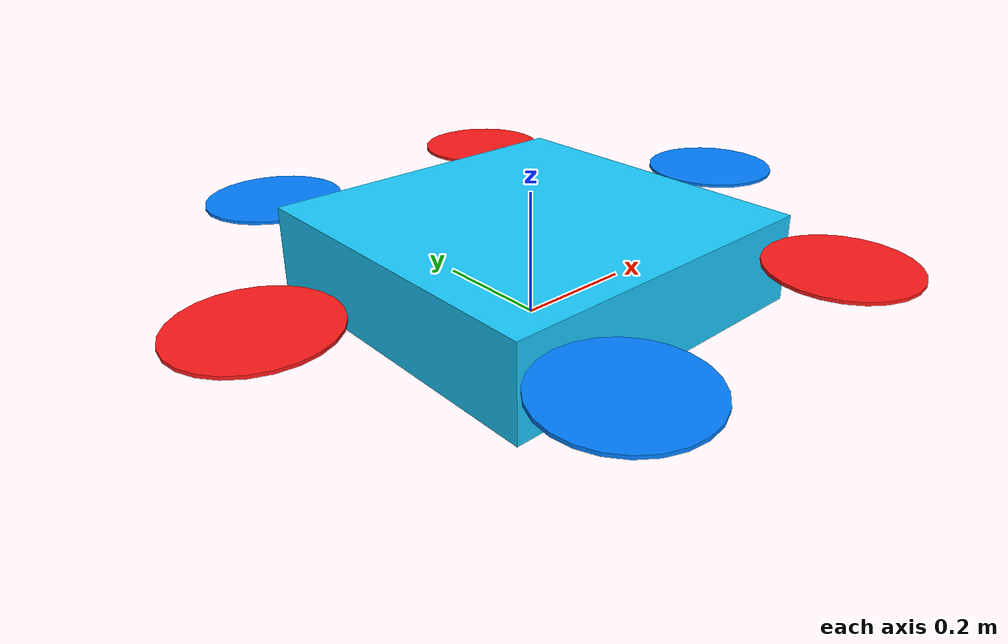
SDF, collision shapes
<?xml version="1.0" ?>
<sdf version="1.8">
  <model name="sutra_uav_standard">
    <pose>0 0 0.1 0 0 0</pose>
    <static>false</static>
    <self_collide>false</self_collide>

    <!-- ── Main Airframe & Avionics Link ───────────────────────────────── -->
    <link name="base_link">
      <pose>0 0 0 0 0 0</pose>
      <inertial>
        <mass>2.00</mass>
        <inertia>
          <ixx>0.0420</ixx>
          <ixy>0</ixy>
          <ixz>0</ixz>
          <iyy>0.0420</iyy>
          <iyz>0</iyz>
          <izz>0.0800</izz>
        </inertia>
      </inertial>

      <collision name="base_link_collision">
        <geometry>
          <box><size>0.55 0.55 0.14</size></box>
        </geometry>
      </collision>

      <!-- 3D Collada Body Mesh: AscTec Firefly Hexacopter Frame -->
      <visual name="base_link_visual">
        <geometry>
          <mesh>
            <scale>1.5 1.5 1.5</scale>
            <uri>model://x3_uav/meshes/firefly.dae</uri>
          </mesh>
        </geometry>
      </visual>

      <!-- Physical Hardware Stack Visuals -->
      <!-- 1. Top 360° LiDAR Puck -->
      <visual name="lidar_puck"><pose>0 0 0.075 0 0 0</pose><geometry><cylinder><radius>0.038</radius><length>0.028</length></cylinder></geometry><material><ambient>0.1 0.7 0.9 1</ambient><diffuse>0.1 0.8 1.0 1</diffuse><emissive>0.0 0.4 0.8 1</emissive></material></visual>
      <!-- 2. Edge AI TPU Enclosure -->
      <visual name="edge_tpu"><pose>-0.05 0 0.035 0 0 0</pose><geometry><box><size>0.08 0.06 0.022</size></box></geometry><material><ambient>0.15 0.15 0.18 1</ambient><diffuse>0.2 0.2 0.25 1</diffuse></material></visual>
      <!-- 3. Dual Camera Gimbal -->
      <visual name="gimbal_pod"><pose>0.15 0 -0.03 0 0.15 0</pose><geometry><box><size>0.04 0.06 0.03</size></box></geometry><material><ambient>0.2 0.2 0.2 1</ambient><diffuse>0.3 0.3 0.3 1</diffuse></material></visual>
      <!-- 4. GNSS Antenna Mast -->
      <visual name="gps_mast"><pose>-0.10 -0.07 0.07 0 0 0</pose><geometry><cylinder><radius>0.004</radius><length>0.09</length></cylinder></geometry><material><ambient>0.1 0.1 0.1 1</ambient><diffuse>0.2 0.2 0.2 1</diffuse></material></visual>
      <visual name="gps_puck"><pose>-0.10 -0.07 0.12 0 0 0</pose><geometry><cylinder><radius>0.020</radius><length>0.010</length></cylinder></geometry><material><ambient>0.8 0.8 0.8 1</ambient><diffuse>0.9 0.9 0.9 1</diffuse></material></visual>
      <!-- 5. LiPo Battery Underbelly -->
      <visual name="lipo_pack"><pose>0 0 -0.03 0 0 0</pose><geometry><box><size>0.12 0.05 0.035</size></box></geometry><material><ambient>0.8 0.6 0.0 1</ambient><diffuse>0.9 0.7 0.0 1</diffuse></material></visual>

      <!-- 📡 9-DOF AVIONICS SENSOR SUITE                                  -->

      <!-- 1. IMU (250Hz High-Rate Accelerometer + Gyroscope) -->
      <sensor name="imu_sensor" type="imu">
        <always_on>1</always_on>
        <update_rate>250.0</update_rate>
        <topic>imu</topic>
        <imu>
          <angular_velocity>
            <x><noise type="gaussian"><stddev>0.0002</stddev><bias_mean>0.00001</bias_mean><bias_stddev>0.000005</bias_stddev></noise></x>
            <y><noise type="gaussian"><stddev>0.0002</stddev><bias_mean>0.00001</bias_mean><bias_stddev>0.000005</bias_stddev></noise></y>
            <z><noise type="gaussian"><stddev>0.0002</stddev><bias_mean>0.00001</bias_mean><bias_stddev>0.000005</bias_stddev></noise></z>
          </angular_velocity>
          <linear_acceleration>
            <x><noise type="gaussian"><stddev>0.01</stddev><bias_mean>0.001</bias_mean><bias_stddev>0.0005</bias_stddev></noise></x>
            <y><noise type="gaussian"><stddev>0.01</stddev><bias_mean>0.001</bias_mean><bias_stddev>0.0005</bias_stddev></noise></y>
            <z><noise type="gaussian"><stddev>0.01</stddev><bias_mean>0.001</bias_mean><bias_stddev>0.0005</bias_stddev></noise></z>
          </linear_acceleration>
        </imu>
      </sensor>

      <!-- 2. Barometer / Air Pressure (50Hz Absolute Pressure for EKF2) -->
      <sensor name="air_pressure_sensor" type="air_pressure">
        <always_on>1</always_on>
        <update_rate>50.0</update_rate>
        <topic>air_pressure</topic>
        <air_pressure>
          <reference_altitude>0.0</reference_altitude>
          <pressure>
            <noise type="gaussian">
              <mean>0.0</mean>
              <stddev>0.01</stddev>
            </noise>
          </pressure>
        </air_pressure>
      </sensor>

      <!-- 3. 3-Axis Magnetometer (50Hz Geomagnetic Field) -->
      <sensor name="magnetometer_sensor" type="magnetometer">
        <always_on>1</always_on>
        <update_rate>50.0</update_rate>
        <topic>magnetic_field</topic>
        <magnetometer>
          <x><noise type="gaussian"><mean>0.0</mean><stddev>0.0001</stddev></noise></x>
          <y><noise type="gaussian"><mean>0.0</mean><stddev>0.0001</stddev></noise></y>
          <z><noise type="gaussian"><mean>0.0</mean><stddev>0.0001</stddev></noise></z>
        </magnetometer>
      </sensor>

      <!-- 4. NavSat / Multi-Band GNSS (10Hz Precision Fix) -->
      <sensor name="navsat_sensor" type="navsat">
        <always_on>1</always_on>
        <update_rate>10.0</update_rate>
        <topic>navsat</topic>
      </sensor>

      <!-- 5. 360° 3D GPU LiDAR (10Hz 32-Channel OctoMap Sensor) -->
      <sensor name="gpu_lidar" type="gpu_lidar">
        <pose>0 0 0.075 0 0 0</pose>
        <always_on>1</always_on>
        <update_rate>10.0</update_rate>
        <topic>scan/points</topic>
        <lidar>
          <scan>
            <horizontal>
              <samples>720</samples>
              <resolution>1</resolution>
              <min_angle>-3.14159265</min_angle>
              <max_angle>3.14159265</max_angle>
            </horizontal>
            <vertical>
              <samples>32</samples>
              <resolution>1</resolution>
              <min_angle>-0.436332</min_angle>
              <max_angle>0.261799</max_angle>
            </vertical>
          </scan>
          <range>
            <min>0.2</min>
            <max>50.0</max>
            <resolution>0.01</resolution>
          </range>
          <noise>
            <type>gaussian</type>
            <mean>0.0</mean>
            <stddev>0.01</stddev>
          </noise>
        </lidar>
      </sensor>

      <!-- 6. Downward Laser Altimeter (50Hz Precision Rangefinder) -->
      <sensor name="altimeter_rangefinder" type="ray">
        <pose>0 0 -0.03 0 1.5707963 0</pose>
        <always_on>1</always_on>
        <update_rate>50.0</update_rate>
        <topic>rangefinder/distance</topic>
        <ray>
          <scan>
            <horizontal><samples>1</samples><resolution>1</resolution><min_angle>0.0</min_angle><max_angle>0.0</max_angle></horizontal>
          </scan>
          <range>
            <min>0.05</min>
            <max>40.0</max>
            <resolution>0.005</resolution>
          </range>
          <noise>
            <type>gaussian</type>
            <mean>0.0</mean>
            <stddev>0.005</stddev>
          </noise>
        </ray>
      </sensor>

      <!-- 7. Forward Optical RGB Camera (30Hz 1280x720 HD) -->
      <sensor name="camera_rgb" type="camera">
        <pose>0.15 -0.015 -0.03 0 0.15 0</pose>
        <always_on>1</always_on>
        <update_rate>30.0</update_rate>
        <topic>camera/image_raw</topic>
        <camera>
          <horizontal_fov>1.3962634</horizontal_fov>
          <image>
            <width>1280</width>
            <height>720</height>
            <format>R8G8B8</format>
          </image>
          <clip>
            <near>0.1</near>
            <far>200.0</far>
          </clip>
        </camera>
      </sensor>

      <!-- 8. Forward FLIR LWIR Thermal Camera (30Hz 640x480 Radiance) -->
      <sensor name="camera_thermal" type="thermal">
        <pose>0.15 0.015 -0.03 0 0.15 0</pose>
        <always_on>1</always_on>
        <update_rate>30.0</update_rate>
        <topic>thermal_camera/image_raw</topic>
        <camera>
          <horizontal_fov>1.0471975</horizontal_fov>
          <image>
            <width>640</width>
            <height>480</height>
            <format>L8</format>
          </image>
          <clip>
            <near>0.1</near>
            <far>150.0</far>
          </clip>
        </camera>
      </sensor>

    </link>

    <!-- ── 6x Rotor Links & Joints (Hexa-X Fault-Tolerant Layout) ───────── -->
    <link name="rotor_0">
      <pose>0.45 0.0 0.04 0 0 0</pose>
      <inertial><mass>0.007</mass><inertia><ixx>9.75e-07</ixx><iyy>4.17e-05</iyy><izz>4.26e-05</izz></inertia></inertial>
      <collision name="rotor_0_collision"><geometry><cylinder><radius>0.11</radius><length>0.005</length></cylinder></geometry></collision>
      <visual name="rotor_0_visual"><geometry><mesh><scale>0.11 0.11 0.11</scale><uri>model://x3_uav/meshes/propeller_ccw.dae</uri></mesh></geometry><material><ambient>0.0 0.4 0.9 1</ambient><diffuse>0.0 0.5 1.0 1</diffuse></material></visual>
    </link>
    <joint name="rotor_0_joint" type="revolute"><child>rotor_0</child><parent>base_link</parent><axis><xyz>0 0 1</xyz><limit><lower>-1e16</lower><upper>1e16</upper></limit></axis></joint>

    <link name="rotor_1">
      <pose>0.225 0.3897 0.04 0 0 0</pose>
      <inertial><mass>0.007</mass><inertia><ixx>9.75e-07</ixx><iyy>4.17e-05</iyy><izz>4.26e-05</izz></inertia></inertial>
      <collision name="rotor_1_collision"><geometry><cylinder><radius>0.11</radius><length>0.005</length></cylinder></geometry></collision>
      <visual name="rotor_1_visual"><geometry><mesh><scale>0.11 0.11 0.11</scale><uri>model://x3_uav/meshes/propeller_cw.dae</uri></mesh></geometry><material><ambient>0.9 0.1 0.1 1</ambient><diffuse>1.0 0.1 0.1 1</diffuse></material></visual>
    </link>
    <joint name="rotor_1_joint" type="revolute"><child>rotor_1</child><parent>base_link</parent><axis><xyz>0 0 1</xyz><limit><lower>-1e16</lower><upper>1e16</upper></limit></axis></joint>

    <link name="rotor_2">
      <pose>-0.225 0.3897 0.04 0 0 0</pose>
      <inertial><mass>0.007</mass><inertia><ixx>9.75e-07</ixx><iyy>4.17e-05</iyy><izz>4.26e-05</izz></inertia></inertial>
      <collision name="rotor_2_collision"><geometry><cylinder><radius>0.11</radius><length>0.005</length></cylinder></geometry></collision>
      <visual name="rotor_2_visual"><geometry><mesh><scale>0.11 0.11 0.11</scale><uri>model://x3_uav/meshes/propeller_ccw.dae</uri></mesh></geometry><material><ambient>0.0 0.4 0.9 1</ambient><diffuse>0.0 0.5 1.0 1</diffuse></material></visual>
    </link>
    <joint name="rotor_2_joint" type="revolute"><child>rotor_2</child><parent>base_link</parent><axis><xyz>0 0 1</xyz><limit><lower>-1e16</lower><upper>1e16</upper></limit></axis></joint>

    <link name="rotor_3">
      <pose>-0.45 0.0 0.04 0 0 0</pose>
      <inertial><mass>0.007</mass><inertia><ixx>9.75e-07</ixx><iyy>4.17e-05</iyy><izz>4.26e-05</izz></inertia></inertial>
      <collision name="rotor_3_collision"><geometry><cylinder><radius>0.11</radius><length>0.005</length></cylinder></geometry></collision>
      <visual name="rotor_3_visual"><geometry><mesh><scale>0.11 0.11 0.11</scale><uri>model://x3_uav/meshes/propeller_cw.dae</uri></mesh></geometry><material><ambient>0.9 0.1 0.1 1</ambient><diffuse>1.0 0.1 0.1 1</diffuse></material></visual>
    </link>
    <joint name="rotor_3_joint" type="revolute"><child>rotor_3</child><parent>base_link</parent><axis><xyz>0 0 1</xyz><limit><lower>-1e16</lower><upper>1e16</upper></limit></axis></joint>

    <link name="rotor_4">
      <pose>-0.225 -0.3897 0.04 0 0 0</pose>
      <inertial><mass>0.007</mass><inertia><ixx>9.75e-07</ixx><iyy>4.17e-05</iyy><izz>4.26e-05</izz></inertia></inertial>
      <collision name="rotor_4_collision"><geometry><cylinder><radius>0.11</radius><length>0.005</length></cylinder></geometry></collision>
      <visual name="rotor_4_visual"><geometry><mesh><scale>0.11 0.11 0.11</scale><uri>model://x3_uav/meshes/propeller_ccw.dae</uri></mesh></geometry><material><ambient>0.0 0.4 0.9 1</ambient><diffuse>0.0 0.5 1.0 1</diffuse></material></visual>
    </link>
    <joint name="rotor_4_joint" type="revolute"><child>rotor_4</child><parent>base_link</parent><axis><xyz>0 0 1</xyz><limit><lower>-1e16</lower><upper>1e16</upper></limit></axis></joint>

    <link name="rotor_5">
      <pose>0.225 -0.3897 0.04 0 0 0</pose>
      <inertial><mass>0.007</mass><inertia><ixx>9.75e-07</ixx><iyy>4.17e-05</iyy><izz>4.26e-05</izz></inertia></inertial>
      <collision name="rotor_5_collision"><geometry><cylinder><radius>0.11</radius><length>0.005</length></cylinder></geometry></collision>
      <visual name="rotor_5_visual"><geometry><mesh><scale>0.11 0.11 0.11</scale><uri>model://x3_uav/meshes/propeller_cw.dae</uri></mesh></geometry><material><ambient>0.9 0.1 0.1 1</ambient><diffuse>1.0 0.1 0.1 1</diffuse></material></visual>
    </link>
    <joint name="rotor_5_joint" type="revolute"><child>rotor_5</child><parent>base_link</parent><axis><xyz>0 0 1</xyz><limit><lower>-1e16</lower><upper>1e16</upper></limit></axis></joint>

    <!-- ── Actuator & Telemetry Plugins ───────────────────────────────── -->
    <plugin filename="gz-sim-joint-state-publisher-system" name="gz::sim::systems::JointStatePublisher">
      <joint_name>rotor_0_joint</joint_name>
      <joint_name>rotor_1_joint</joint_name>
      <joint_name>rotor_2_joint</joint_name>
      <joint_name>rotor_3_joint</joint_name>
      <joint_name>rotor_4_joint</joint_name>
      <joint_name>rotor_5_joint</joint_name>
    </plugin>

    <plugin filename="gz-sim-velocity-control-system" name="gz::sim::systems::VelocityControl">
      <link_name>base_link</link_name>
      <topic>gazebo/command/twist</topic>
    </plugin>

    <plugin filename="gz-sim-odometry-publisher-system" name="gz::sim::systems::OdometryPublisher">
      <dimensions>3</dimensions>
    </plugin>

  </model>
</sdf>
